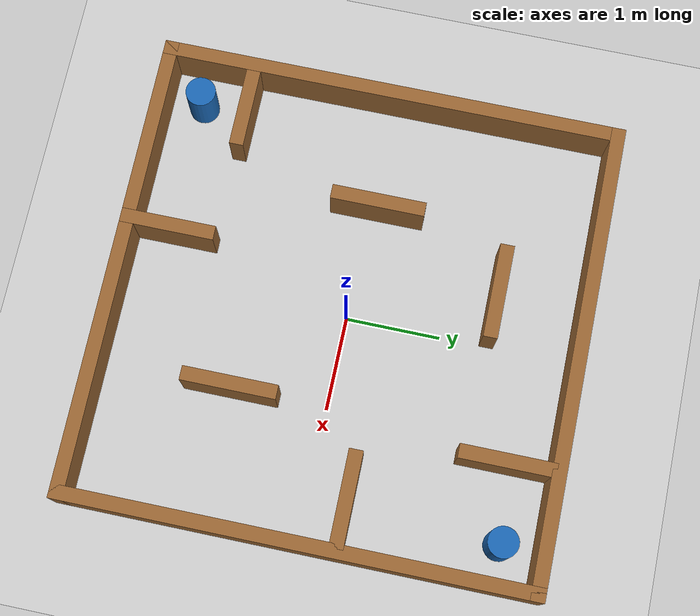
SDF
<sdf version="1.8">
 <world name="empty">
  <physics name="1ms" type="ignored">
   <max_step_size>0.001</max_step_size>
   <real_time_factor>1.0</real_time_factor>
  </physics>
  <plugin filename="libignition-gazebo-physics-system.so" name="ignition::gazebo::systems::Physics"/>
  <plugin filename="libignition-gazebo-user-commands-system.so" name="ignition::gazebo::systems::UserCommands"/>
  <plugin filename="libignition-gazebo-scene-broadcaster-system.so" name="ignition::gazebo::systems::SceneBroadcaster"/>
  <plugin filename="libignition-gazebo-sensors-system.so" name="ignition::gazebo::systems::Sensors">
   <render_engine>ogre2</render_engine>
  </plugin>
  <light type="directional" name="sun">
   <pose>0 0 10 0 0 0</pose>
   <diffuse>0.8 0.8 0.8 1</diffuse>
   <specular>0.2 0.2 0.2 1</specular>
   <direction>-0.5 0.1 -0.9</direction>
  </light>
  <model name="ground_plane">
   <static>true</static>
   <link name="link">
    <collision name="collision">
     <geometry><plane><normal>0 0 1</normal><size>100 100</size></plane></geometry>
    </collision>
    <visual name="visual">
     <geometry><plane><normal>0 0 1</normal><size>100 100</size></plane></geometry>
     <material><ambient>0.8 0.8 0.8 1</ambient><diffuse>0.8 0.8 0.8 1</diffuse></material>
    </visual>
   </link>
  </model>
  <model name="outer_wall_1">
   <static>true</static>
   <pose>-2.425 0 0 0 0 1.5708</pose>
   <link name="link">
    <collision name="col">
     <pose>0 0 0.25 0 0 0</pose>
     <geometry><box><size>5 0.15 0.5</size></box></geometry>
    </collision>
    <visual name="vis">
     <pose>0 0 0.25 0 0 0</pose>
     <geometry><box><size>5 0.15 0.5</size></box></geometry>
     <material><ambient>0.6 0.4 0.2 1</ambient><diffuse>0.6 0.4 0.2 1</diffuse></material>
    </visual>
   </link>
  </model>
  <model name="outer_wall_2">
   <static>true</static>
   <pose>0 2.425 0 0 0 0</pose>
   <link name="link">
    <collision name="col">
     <pose>0 0 0.25 0 0 0</pose>
     <geometry><box><size>5 0.15 0.5</size></box></geometry>
    </collision>
    <visual name="vis">
     <pose>0 0 0.25 0 0 0</pose>
     <geometry><box><size>5 0.15 0.5</size></box></geometry>
     <material><ambient>0.6 0.4 0.2 1</ambient><diffuse>0.6 0.4 0.2 1</diffuse></material>
    </visual>
   </link>
  </model>
  <model name="outer_wall_3">
   <static>true</static>
   <pose>2.425 0 0 0 0 -1.5708</pose>
   <link name="link">
    <collision name="col">
     <pose>0 0 0.25 0 0 0</pose>
     <geometry><box><size>5 0.15 0.5</size></box></geometry>
    </collision>
    <visual name="vis">
     <pose>0 0 0.25 0 0 0</pose>
     <geometry><box><size>5 0.15 0.5</size></box></geometry>
     <material><ambient>0.6 0.4 0.2 1</ambient><diffuse>0.6 0.4 0.2 1</diffuse></material>
    </visual>
   </link>
  </model>
  <model name="outer_wall_4">
   <static>true</static>
   <pose>0 -2.425 0 0 0 3.14159</pose>
   <link name="link">
    <collision name="col">
     <pose>0 0 0.25 0 0 0</pose>
     <geometry><box><size>5 0.15 0.5</size></box></geometry>
    </collision>
    <visual name="vis">
     <pose>0 0 0.25 0 0 0</pose>
     <geometry><box><size>5 0.15 0.5</size></box></geometry>
     <material><ambient>0.6 0.4 0.2 1</ambient><diffuse>0.6 0.4 0.2 1</diffuse></material>
    </visual>
   </link>
  </model>
  <model name="inner_wall_1">
   <static>true</static>
   <pose>-2.0 -1.5 0 0 0 0.0</pose>
   <link name="link">
    <collision name="col">
     <pose>0 0 0.25 0 0 0</pose>
     <geometry><box><size>1 0.15 0.5</size></box></geometry>
    </collision>
    <visual name="vis">
     <pose>0 0 0.25 0 0 0</pose>
     <geometry><box><size>1 0.15 0.5</size></box></geometry>
     <material><ambient>0.6 0.4 0.2 1</ambient><diffuse>0.6 0.4 0.2 1</diffuse></material>
    </visual>
   </link>
  </model>
  <model name="inner_wall_2">
   <static>true</static>
   <pose>-0.5 -2.0 0 0 0 -1.5708</pose>
   <link name="link">
    <collision name="col">
     <pose>0 0 0.25 0 0 0</pose>
     <geometry><box><size>1 0.15 0.5</size></box></geometry>
    </collision>
    <visual name="vis">
     <pose>0 0 0.25 0 0 0</pose>
     <geometry><box><size>1 0.15 0.5</size></box></geometry>
     <material><ambient>0.6 0.4 0.2 1</ambient><diffuse>0.6 0.4 0.2 1</diffuse></material>
    </visual>
   </link>
  </model>
  <model name="inner_wall_3">
   <static>true</static>
   <pose>1.0 -1.0 0 0 0 1.5708</pose>
   <link name="link">
    <collision name="col">
     <pose>0 0 0.25 0 0 0</pose>
     <geometry><box><size>1 0.15 0.5</size></box></geometry>
    </collision>
    <visual name="vis">
     <pose>0 0 0.25 0 0 0</pose>
     <geometry><box><size>1 0.15 0.5</size></box></geometry>
     <material><ambient>0.6 0.4 0.2 1</ambient><diffuse>0.6 0.4 0.2 1</diffuse></material>
    </visual>
   </link>
  </model>
  <model name="inner_wall_4">
   <static>true</static>
   <pose>1.2 1.9 0 0 0 -1.5708</pose>
   <link name="link">
    <collision name="col">
     <pose>0 0 0.25 0 0 0</pose>
     <geometry><box><size>1 0.15 0.5</size></box></geometry>
    </collision>
    <visual name="vis">
     <pose>0 0 0.25 0 0 0</pose>
     <geometry><box><size>1 0.15 0.5</size></box></geometry>
     <material><ambient>0.6 0.4 0.2 1</ambient><diffuse>0.6 0.4 0.2 1</diffuse></material>
    </visual>
   </link>
  </model>
  <model name="inner_wall_5">
   <static>true</static>
   <pose>1.9 0.4 0 0 0 0.0</pose>
   <link name="link">
    <collision name="col">
     <pose>0 0 0.25 0 0 0</pose>
     <geometry><box><size>1 0.15 0.5</size></box></geometry>
    </collision>
    <visual name="vis">
     <pose>0 0 0.25 0 0 0</pose>
     <geometry><box><size>1 0.15 0.5</size></box></geometry>
     <material><ambient>0.6 0.4 0.2 1</ambient><diffuse>0.6 0.4 0.2 1</diffuse></material>
    </visual>
   </link>
  </model>
  <model name="inner_wall_6">
   <static>true</static>
   <pose>-0.5 1.5 0 0 0 0.0</pose>
   <link name="link">
    <collision name="col">
     <pose>0 0 0.25 0 0 0</pose>
     <geometry><box><size>1 0.15 0.5</size></box></geometry>
    </collision>
    <visual name="vis">
     <pose>0 0 0.25 0 0 0</pose>
     <geometry><box><size>1 0.15 0.5</size></box></geometry>
     <material><ambient>0.6 0.4 0.2 1</ambient><diffuse>0.6 0.4 0.2 1</diffuse></material>
    </visual>
   </link>
  </model>
  <model name="inner_wall_7">
   <static>true</static>
   <pose>-1.2 0.092 0 0 0 -1.5708</pose>
   <link name="link">
    <collision name="col">
     <pose>0 0 0.25 0 0 0</pose>
     <geometry><box><size>1 0.15 0.5</size></box></geometry>
    </collision>
    <visual name="vis">
     <pose>0 0 0.25 0 0 0</pose>
     <geometry><box><size>1 0.15 0.5</size></box></geometry>
     <material><ambient>0.6 0.4 0.2 1</ambient><diffuse>0.6 0.4 0.2 1</diffuse></material>
    </visual>
   </link>
  </model>
  <model name="moving_obs_1">
   <static>true</static>
   <pose>2.0 2.0 0 0 0 0</pose>
   <link name="link">
    <pose>0 0 0.25 0 0 0</pose>
    <collision name="col">
     <geometry><cylinder><radius>0.16</radius><length>0.5</length></cylinder></geometry>
    </collision>
    <visual name="vis">
     <geometry><cylinder><radius>0.16</radius><length>0.5</length></cylinder></geometry>
     <material><ambient>0.1 0.4 0.7 1</ambient><diffuse>0.1 0.4 0.7 1</diffuse></material>
    </visual>
   </link>
  </model>
  <model name="moving_obs_2">
   <static>true</static>
   <pose>-2.0 -2.0 0 0 0 0</pose>
   <link name="link">
    <pose>0 0 0.25 0 0 0</pose>
    <collision name="col">
     <geometry><cylinder><radius>0.16</radius><length>0.5</length></cylinder></geometry>
    </collision>
    <visual name="vis">
     <geometry><cylinder><radius>0.16</radius><length>0.5</length></cylinder></geometry>
     <material><ambient>0.1 0.4 0.7 1</ambient><diffuse>0.1 0.4 0.7 1</diffuse></material>
    </visual>
   </link>
  </model>
 </world>
</sdf>
